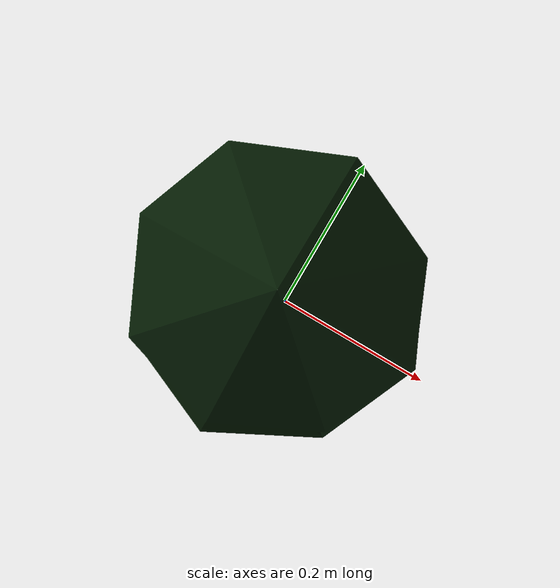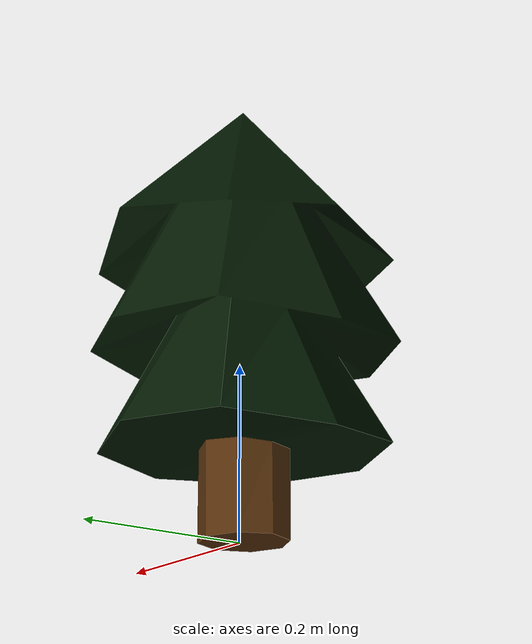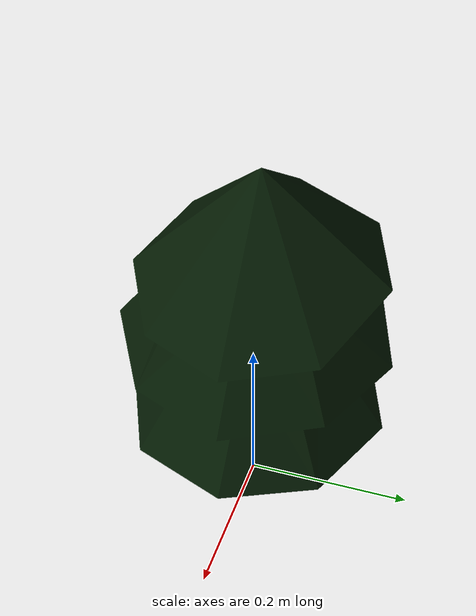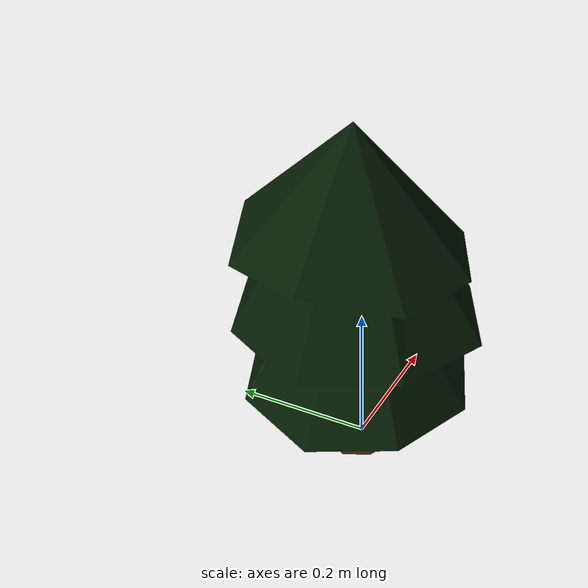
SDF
<?xml version="1.0" ?>
<sdf version="1.8">
  <model name="DecoTreePine">
    <static>true</static>
    <link name="DecoTreePine">
      <visual name="visual">
        <geometry>
          <mesh>
            <uri>model://YahboomTrack/DecoTreePine/meshes/DecoTreePine.dae</uri>
            <scale>2.0 2.0 2.0</scale>
          </mesh>
        </geometry>
      </visual>
      <collision name="visual">
        <geometry>
          <mesh>
            <uri>model://YahboomTrack/DecoTreePine/meshes/DecoTreePine.dae</uri>
            <scale>2.0 2.0 2.0</scale>
          </mesh>
        </geometry>
      </collision>
    </link>
  </model>
</sdf>
